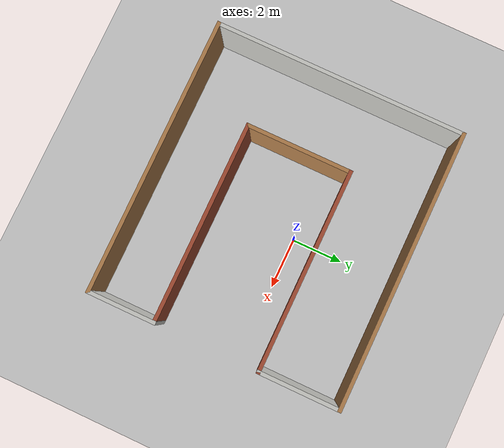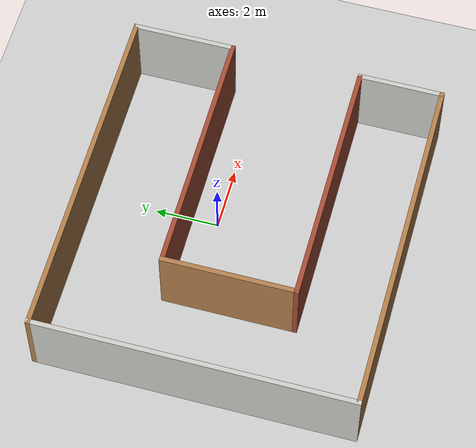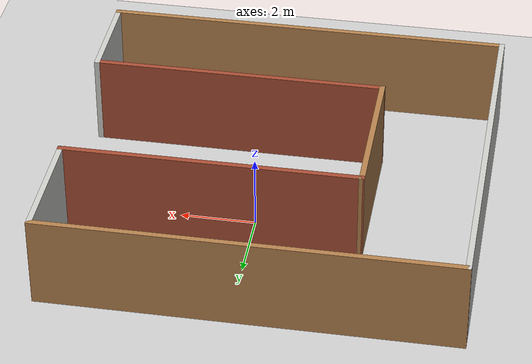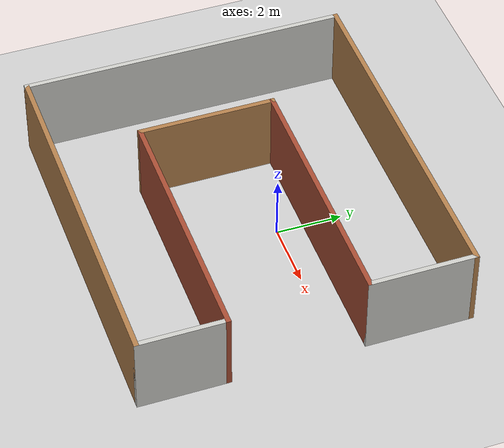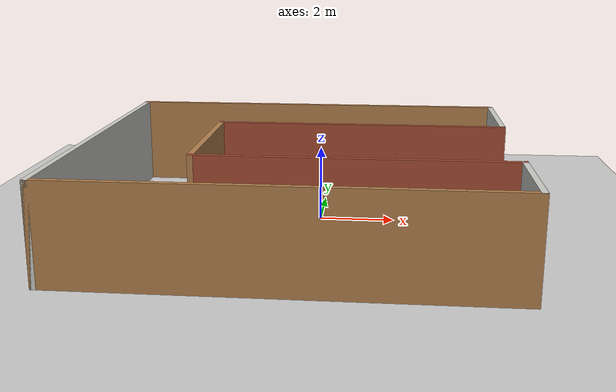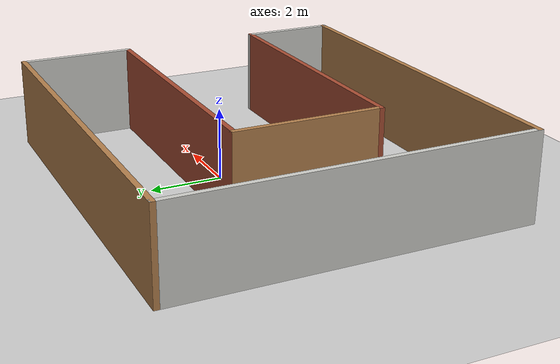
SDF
<sdf version="1.7">
 <world name="default">
  <light name="sun" type="directional">
   <pose>0 0 10 0 -0 0</pose>
   <diffuse>0.8 0.8 0.8 1</diffuse>
   <specular>0.2 0.2 0.2 1</specular>
   <attenuation>
    <range>1000</range>
    <constant>0.9</constant>
    <linear>0.01</linear>
    <quadratic>0.001</quadratic>
   </attenuation>
   <direction>-0.5 0.1 -0.9</direction>
   <spot><inner_angle>0</inner_angle><outer_angle>0</outer_angle><falloff>0</falloff></spot>
  </light>
  <model name="ground_plane">
   <static>1</static>
   <link name="link">
    <collision name="collision">
     <geometry><plane><normal>0 0 1</normal><size>100 100</size></plane></geometry>
     <surface>
      <contact><collide_bitmask>65535</collide_bitmask></contact>
      <friction><ode><mu>100</mu><mu2>50</mu2></ode></friction>
     </surface>
    </collision>
    <visual name="visual">
     <cast_shadows>0</cast_shadows>
     <geometry><plane><normal>0 0 1</normal><size>100 100</size></plane></geometry>
     <material>
      <script><uri>file://media/materials/scripts/gazebo.material</uri><name>Gazebo/Grey</name></script>
     </material>
    </visual>
   </link>
  </model>
  <gravity>0 0 -9.8</gravity>
  <magnetic_field>6e-06 2.3e-05 -4.2e-05</magnetic_field>
  <atmosphere type="adiabatic"/>
  <physics type="ode">
   <max_step_size>0.001</max_step_size>
   <real_time_factor>1</real_time_factor>
   <real_time_update_rate>1000</real_time_update_rate>
  </physics>
  <scene><ambient>0.4 0.4 0.4 1</ambient><background>0.7 0.7 0.7 1</background><shadows>1</shadows></scene>
  <audio><device>default</device></audio>
  <spherical_coordinates>
   <surface_model>EARTH_WGS84</surface_model>
   <latitude_deg>0</latitude_deg>
   <longitude_deg>0</longitude_deg>
   <elevation>0</elevation>
   <heading_deg>0</heading_deg>
  </spherical_coordinates>
  <model name="model">
   <pose>-0.480538 -0.895346 0 0 -0 0</pose>
   <link name="Wall_10">
    <collision name="Wall_10_Collision">
     <geometry><box><size>8 0.15 2.5</size></box></geometry>
     <pose>0 0 1.25 0 -0 0</pose>
    </collision>
    <visual name="Wall_10_Visual">
     <pose>0 0 1.25 0 -0 0</pose>
     <geometry><box><size>8 0.15 2.5</size></box></geometry>
     <material>
      <script><uri>file://media/materials/scripts/gazebo.material</uri><name>Gazebo/Bricks</name></script>
      <ambient>1 1 1 1</ambient>
     </material>
     <meta><layer>0</layer></meta>
    </visual>
    <pose>1.5 -2.325 0 0 -0 3.14159</pose>
   </link>
   <link name="Wall_11">
    <collision name="Wall_11_Collision">
     <geometry><box><size>4.25 0.15 2.5</size></box></geometry>
     <pose>0 0 1.25 0 -0 0</pose>
    </collision>
    <visual name="Wall_11_Visual">
     <pose>0 0 1.25 0 -0 0</pose>
     <geometry><box><size>4.25 0.15 2.5</size></box></geometry>
     <material>
      <script><uri>file://media/materials/scripts/gazebo.material</uri><name>Gazebo/Wood</name></script>
      <ambient>1 1 1 1</ambient>
     </material>
     <meta><layer>0</layer></meta>
    </visual>
    <pose>-2.425 -0.275 0 0 -0 1.5708</pose>
   </link>
   <link name="Wall_12">
    <collision name="Wall_12_Collision">
     <geometry><box><size>8 0.15 2.5</size></box></geometry>
     <pose>0 0 1.25 0 -0 0</pose>
    </collision>
    <visual name="Wall_12_Visual">
     <pose>0 0 1.25 0 -0 0</pose>
     <geometry><box><size>8 0.15 2.5</size></box></geometry>
     <material>
      <script><uri>file://media/materials/scripts/gazebo.material</uri><name>Gazebo/Bricks</name></script>
      <ambient>1 1 1 1</ambient>
     </material>
     <meta><layer>0</layer></meta>
    </visual>
    <pose>1.5 1.775 0 0 -0 0</pose>
   </link>
   <link name="Wall_13">
    <collision name="Wall_13_Collision">
     <geometry><box><size>3.25 0.15 2.5</size></box></geometry>
     <pose>0 0 1.25 0 -0 0</pose>
    </collision>
    <visual name="Wall_13_Visual">
     <pose>0 0 1.25 0 -0 0</pose>
     <geometry><box><size>3.25 0.15 2.5</size></box></geometry>
     <material>
      <script><uri>file://media/materials/scripts/gazebo.material</uri><name>Gazebo/CeilingTiled</name></script>
      <ambient>1 1 1 1</ambient>
     </material>
     <meta><layer>0</layer></meta>
    </visual>
    <pose>5.425 3.325 0 0 -0 1.5708</pose>
   </link>
   <link name="Wall_3">
    <collision name="Wall_3_Collision">
     <geometry><box><size>11 0.15 2.5</size></box></geometry>
     <pose>0 0 1.25 0 -0 0</pose>
    </collision>
    <visual name="Wall_3_Visual">
     <pose>0 0 1.25 0 -0 0</pose>
     <geometry><box><size>11 0.15 2.5</size></box></geometry>
     <material>
      <script><uri>file://media/materials/scripts/gazebo.material</uri><name>Gazebo/Wood</name></script>
      <ambient>1 1 1 1</ambient>
     </material>
     <meta><layer>0</layer></meta>
    </visual>
    <pose>0 4.925 0 0 -0 3.14159</pose>
   </link>
   <link name="Wall_7">
    <collision name="Wall_7_Collision">
     <geometry><box><size>10 0.15 2.5</size></box></geometry>
     <pose>0 0 1.25 0 -0 0</pose>
    </collision>
    <visual name="Wall_7_Visual">
     <pose>0 0 1.25 0 -0 0</pose>
     <geometry><box><size>10 0.15 2.5</size></box></geometry>
     <material>
      <script><uri>file://media/materials/scripts/gazebo.material</uri><name>Gazebo/CeilingTiled</name></script>
      <ambient>1 1 1 1</ambient>
     </material>
     <meta><layer>0</layer></meta>
    </visual>
    <pose>-5.425 0 0 0 -0 -1.5708</pose>
   </link>
   <link name="Wall_8">
    <collision name="Wall_8_Collision">
     <geometry><box><size>11 0.15 2.5</size></box></geometry>
     <pose>0 0 1.25 0 -0 0</pose>
    </collision>
    <visual name="Wall_8_Visual">
     <pose>0 0 1.25 0 -0 0</pose>
     <geometry><box><size>11 0.15 2.5</size></box></geometry>
     <material>
      <script><uri>file://media/materials/scripts/gazebo.material</uri><name>Gazebo/Wood</name></script>
      <ambient>1 1 1 1</ambient>
     </material>
     <meta><layer>0</layer></meta>
    </visual>
    <pose>0 -4.925 0 0 -0 0</pose>
   </link>
   <link name="Wall_9">
    <collision name="Wall_9_Collision">
     <geometry><box><size>2.75 0.15 2.5</size></box></geometry>
     <pose>0 0 1.25 0 -0 0</pose>
    </collision>
    <visual name="Wall_9_Visual">
     <pose>0 0 1.25 0 -0 0</pose>
     <geometry><box><size>2.75 0.15 2.5</size></box></geometry>
     <material>
      <script><uri>file://media/materials/scripts/gazebo.material</uri><name>Gazebo/CeilingTiled</name></script>
      <ambient>1 1 1 1</ambient>
     </material>
     <meta><layer>0</layer></meta>
    </visual>
    <pose>5.425 -3.625 0 0 -0 1.5708</pose>
   </link>
   <static>1</static>
  </model>
 </world>
</sdf>
